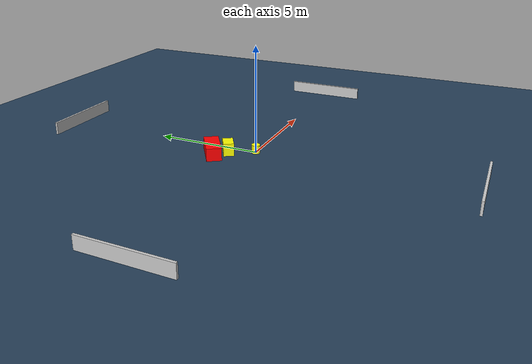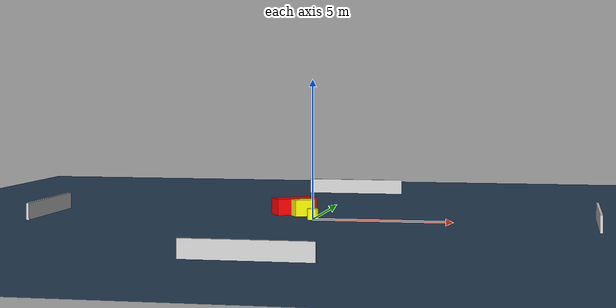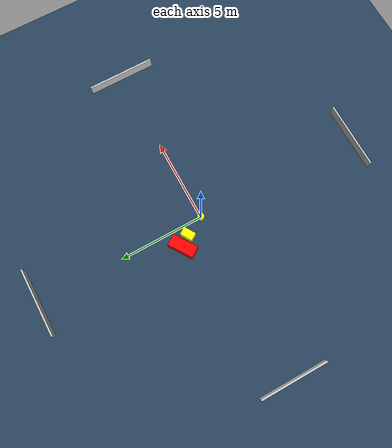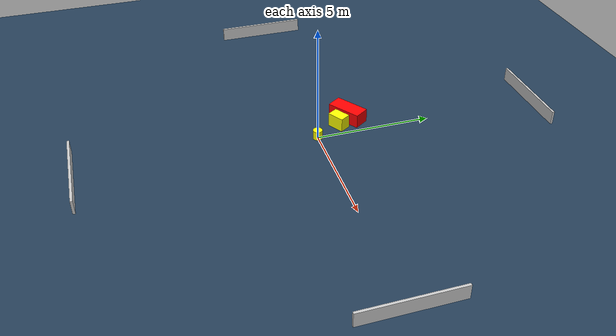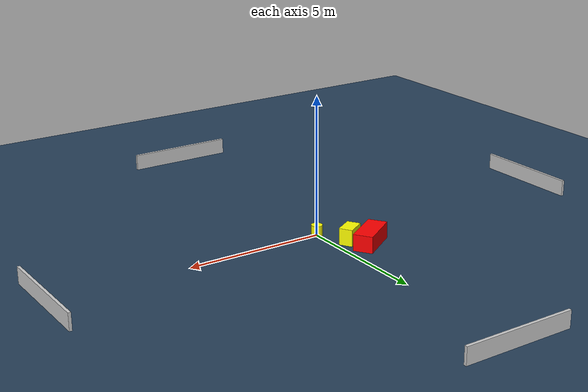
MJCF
<?xml version="1.0" ?>
<mujoco model="generated_environment">
  <option timestep="0.01" integrator="RK4" cone="elliptic"/>
  <default>
    <geom density="1"/>
  </default>
  <asset>
    <texture builtin="gradient" height="3072" name="skybox" rgb1="0.3 0.5 0.7" rgb2="0 0 0" type="skybox" width="512"/>
    <texture builtin="checker" height="300" name="groundplane" rgb1="0.2 0.3 0.4" rgb2="0.1 0.2 0.3" type="2d" width="300"/>
    <material name="groundplane" reflectance="0.2" texrepeat="5 5" texture="groundplane"/>
  </asset>
  <worldbody>
    <light dir="0 0 -1" directional="true" pos="0 0 1.5"/>
    <geom condim="3" friction="0.5 0.005 0.001" material="groundplane" name="floor" pos="0 0 0" size="0 0 0.05" type="plane"/>
    <body name="walls">
      <geom name="wall_1" condim="4" pos="-10.0 0.0 0.3" rgba="0.800000011920929 0.800000011920929 0.800000011920929 1.0" size="0.05 2.0 0.3" type="box"/>
      <geom name="wall_2" condim="4" pos="10.0 0.0 0.3" rgba="0.800000011920929 0.800000011920929 0.800000011920929 1.0" size="0.05 2.0 0.3" type="box"/>
      <geom name="wall_3" condim="4" pos="0.0 -10.0 0.3" rgba="0.800000011920929 0.800000011920929 0.800000011920929 1.0" size="2.0 0.05 0.3" type="box"/>
      <geom name="wall_4" condim="4" pos="0.0 10.0 0.3" rgba="0.800000011920929 0.800000011920929 0.800000011920929 1.0" size="2.0 0.05 0.3" type="box"/>
    </body>
    <body name="robot">
      <joint name="joint_x" type="slide" pos="0 0 0" axis="1 0 0"/>
      <joint name="joint_y" type="slide" pos="0 0 0" axis="0 1 0"/>
      <geom name="robot" type="cylinder" pos="0.0 0.0 0.2" size="0.2 0.2 0.0" mass="5.0" friction="1.0 0.005 0.0001" condim="4" rgba="1.0 1.0 0.0 1.0"/>
    </body>
    <body name="obstacle_1_movable">
      <geom name="obstacle_1_movable" condim="4" pos="-0.5864819580429034 1.1346231060543517 0.3" euler="0 0 301.2636572495873" friction="0.0 0.005 0.001" rgba="1.0 1.0 0.0 1.0" size="0.24219981365374935 0.37204873120075665 0.3" type="box" mass="0.1"/>
      <joint type="free"/>
    </body>
    <body name="obstacle_2_static">
      <geom name="obstacle_2_static" condim="4" pos="-1.0481152606019373 1.6990165627332994 0.3" euler="0 0 123.7826095137379" friction="0.0 0.005 0.001" rgba="1.0 0.0 0.0 1.0" size="0.34633574889995855 0.7642812078680186 0.3" type="box"/>
    </body>
  </worldbody>
  <actuator>
    <motor name="actuator_x" joint="joint_x" gear="1" ctrlrange="-1 1"/>
    <motor name="actuator_y" joint="joint_y" gear="1" ctrlrange="-1 1"/>
  </actuator>
</mujoco>
